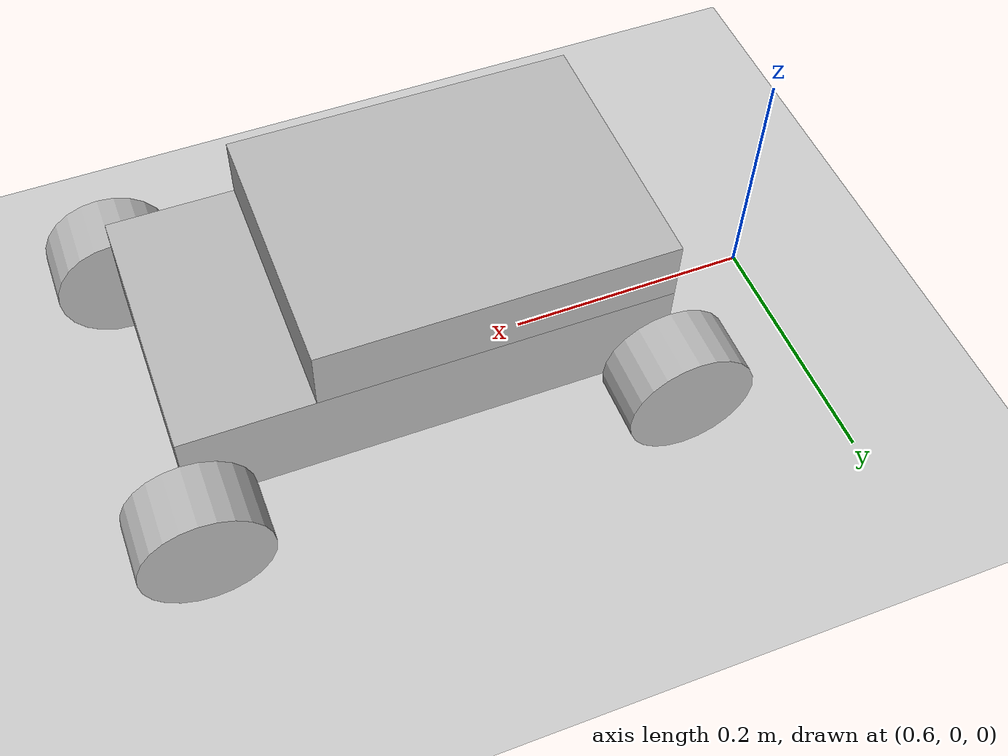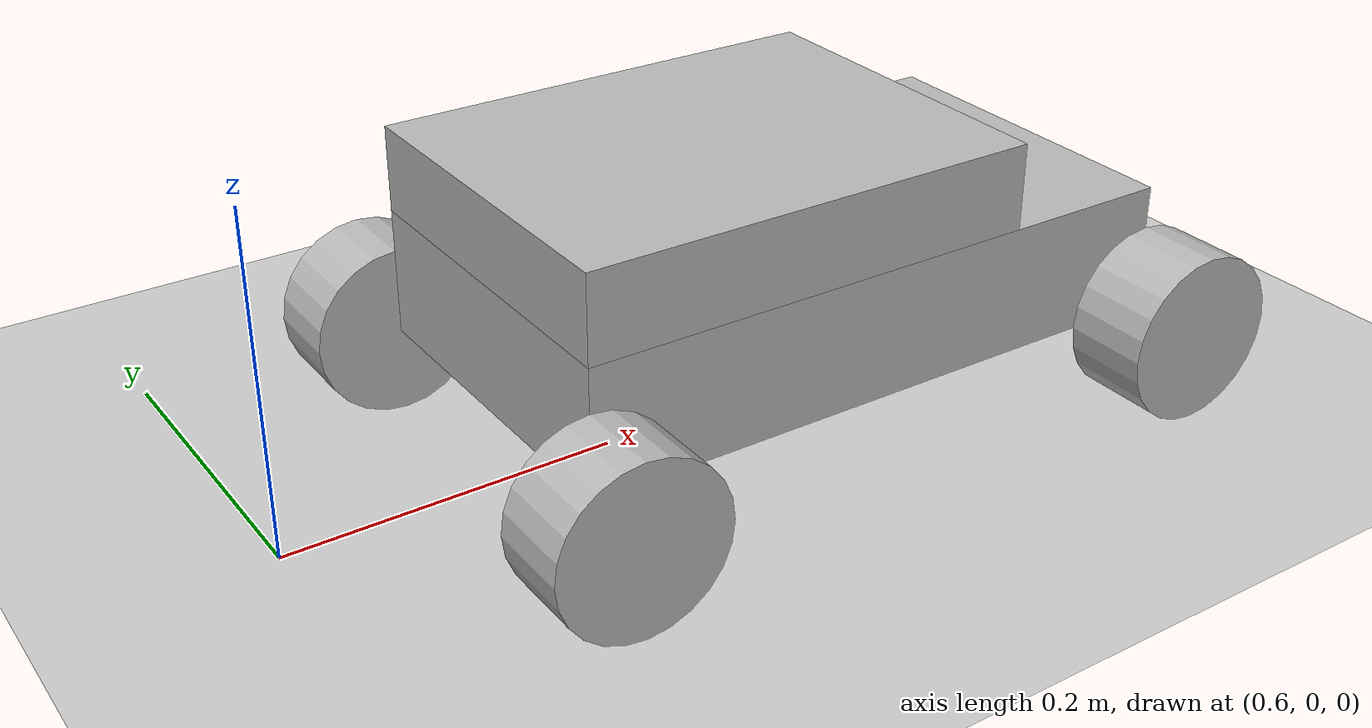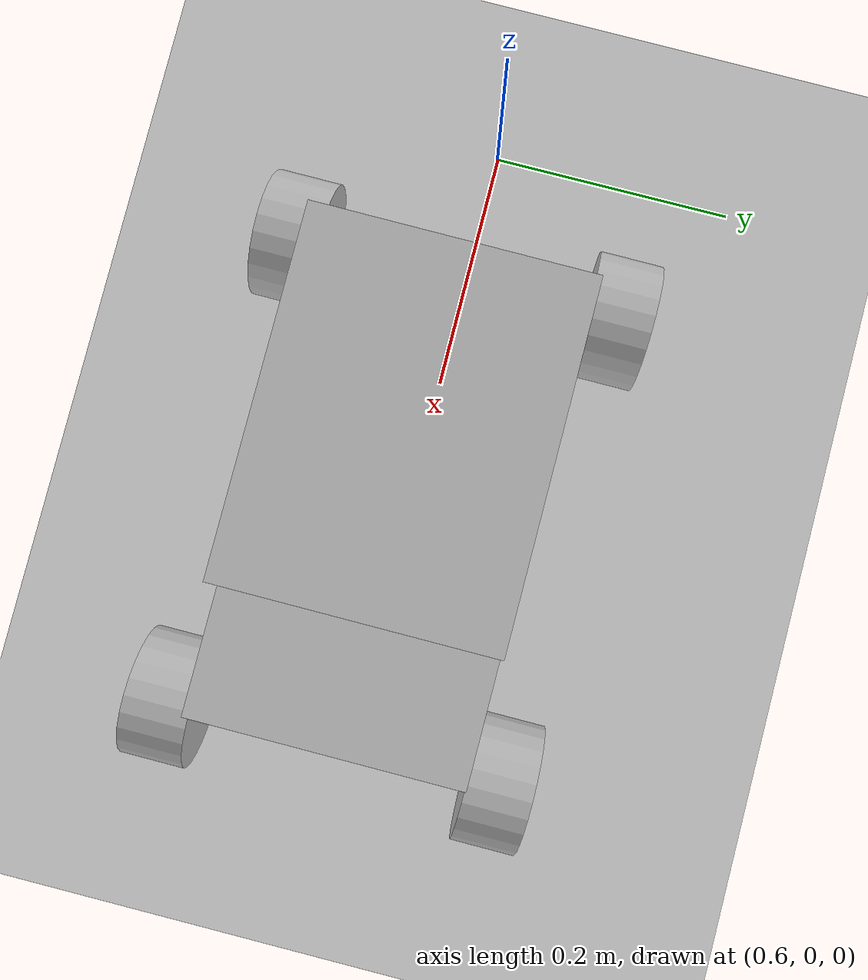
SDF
<sdf version="1.7">
 <world name="default">
  <light name="sun" type="directional">
   <pose>0 0 10 0 -0 0</pose>
   <diffuse>0.8 0.8 0.8 1</diffuse>
   <specular>0.2 0.2 0.2 1</specular>
   <attenuation>
    <range>1000</range>
    <constant>0.9</constant>
    <linear>0.01</linear>
    <quadratic>0.001</quadratic>
   </attenuation>
   <direction>-0.5 0.1 -0.9</direction>
   <spot><inner_angle>0</inner_angle><outer_angle>0</outer_angle><falloff>0</falloff></spot>
  </light>
  <model name="ground_plane">
   <static>1</static>
   <link name="link">
    <collision name="collision">
     <geometry><plane><normal>0 0 1</normal><size>100 100</size></plane></geometry>
     <surface>
      <contact><collide_bitmask>65535</collide_bitmask></contact>
      <friction><ode><mu>100</mu><mu2>50</mu2></ode></friction>
     </surface>
    </collision>
    <visual name="visual">
     <cast_shadows>0</cast_shadows>
     <geometry><plane><normal>0 0 1</normal><size>100 100</size></plane></geometry>
     <material>
      <script><uri>file://media/materials/scripts/gazebo.material</uri><name>Gazebo/Grey</name></script>
     </material>
    </visual>
   </link>
  </model>
  <gravity>0 0 -9.8</gravity>
  <magnetic_field>6e-06 2.3e-05 -4.2e-05</magnetic_field>
  <atmosphere type="adiabatic"/>
  <physics type="ode">
   <max_step_size>0.001</max_step_size>
   <real_time_factor>1</real_time_factor>
   <real_time_update_rate>1000</real_time_update_rate>
  </physics>
  <scene><ambient>0.4 0.4 0.4 1</ambient><background>0.7 0.7 0.7 1</background><shadows>1</shadows></scene>
  <spherical_coordinates>
   <surface_model>EARTH_WGS84</surface_model>
   <latitude_deg>0</latitude_deg>
   <longitude_deg>0</longitude_deg>
   <elevation>0</elevation>
   <heading_deg>0</heading_deg>
  </spherical_coordinates>
  <model name="car">
   <link name="base_link">
    <inertial>
     <pose>-0.01524 0 0.01905 0 -0 0</pose>
     <mass>1</mass>
     <inertia>
      <ixx>0.00500948</ixx>
      <ixy>0</ixy>
      <ixz>0.000677418</ixz>
      <iyy>0.0119328</iyy>
      <iyz>0</iyz>
      <izz>0.0144423</izz>
     </inertia>
    </inertial>
    <collision name="base_link_collision">
     <geometry><box><size>0.3762 0.2124 0.0762</size></box></geometry>
     <surface><friction><ode><mu>0.2</mu><mu2>0.2</mu2></ode></friction></surface>
    </collision>
    <collision name="base_link_fixed_joint_lump__capota_collision_1">
     <pose>-0.0508 0 0.0635 0 -0 0</pose>
     <geometry><box><size>0.2746 0.2124 0.0508</size></box></geometry>
    </collision>
    <visual name="base_link_visual"><geometry><box><size>0.3762 0.2124 0.0762</size></box></geometry></visual>
    <visual name="base_link_fixed_joint_lump__capota_visual_1">
     <pose>-0.0508 0 0.0635 0 -0 0</pose>
     <geometry><box><size>0.2746 0.2124 0.0508</size></box></geometry>
    </visual>
   </link>
   <joint name="back_left_wheel_joint" type="revolute">
    <pose relative_to="base_link">-0.1881 0.1316 -0.0381 1.5708 -0 0</pose>
    <parent>base_link</parent>
    <child>back_left_wheel_link</child>
    <axis>
     <xyz>0 0 1</xyz>
     <limit><lower>-0.5</lower><upper>0.5</upper><effort>10</effort><velocity>10</velocity></limit>
     <dynamics><spring_reference>0</spring_reference><spring_stiffness>0</spring_stiffness></dynamics>
    </axis>
   </joint>
   <link name="back_left_wheel_link">
    <pose relative_to="back_left_wheel_joint">0 0 0 0 -0 0</pose>
    <inertial>
     <mass>0.1</mass>
     <inertia>
      <ixx>8.60213e-05</ixx>
      <ixy>0</ixy>
      <ixz>0</ixz>
      <iyy>8.60213e-05</iyy>
      <iyz>0</iyz>
      <izz>0.000129032</izz>
     </inertia>
    </inertial>
    <collision name="back_left_wheel_link_collision">
     <geometry><cylinder><length>0.0508</length><radius>0.0508</radius></cylinder></geometry>
     <surface><friction><ode><mu>1</mu><mu2>1</mu2></ode></friction></surface>
    </collision>
    <visual name="back_left_wheel_link_visual">
     <geometry><cylinder><length>0.0508</length><radius>0.0508</radius></cylinder></geometry>
    </visual>
   </link>
   <joint name="back_right_wheel_joint" type="revolute">
    <pose relative_to="base_link">-0.1881 -0.1316 -0.0381 1.5708 -0 0</pose>
    <parent>base_link</parent>
    <child>back_right_wheel_link</child>
    <axis>
     <xyz>0 0 1</xyz>
     <limit><lower>-0.5</lower><upper>0.5</upper><effort>10</effort><velocity>10</velocity></limit>
     <dynamics><spring_reference>0</spring_reference><spring_stiffness>0</spring_stiffness></dynamics>
    </axis>
   </joint>
   <link name="back_right_wheel_link">
    <pose relative_to="back_right_wheel_joint">0 0 0 0 -0 0</pose>
    <inertial>
     <mass>0.1</mass>
     <inertia>
      <ixx>8.60213e-05</ixx>
      <ixy>0</ixy>
      <ixz>0</ixz>
      <iyy>8.60213e-05</iyy>
      <iyz>0</iyz>
      <izz>0.000129032</izz>
     </inertia>
    </inertial>
    <collision name="back_right_wheel_link_collision">
     <geometry><cylinder><length>0.0508</length><radius>0.0508</radius></cylinder></geometry>
     <surface><friction><ode><mu>1</mu><mu2>1</mu2></ode></friction></surface>
    </collision>
    <visual name="back_right_wheel_link_visual">
     <geometry><cylinder><length>0.0508</length><radius>0.0508</radius></cylinder></geometry>
    </visual>
   </link>
   <joint name="front_left_wheel_joint" type="revolute">
    <pose relative_to="base_link">0.1881 0.1316 -0.0381 1.5708 -0 0</pose>
    <parent>base_link</parent>
    <child>front_left_wheel_link</child>
    <axis>
     <xyz>0 0 1</xyz>
     <limit><lower>-0.5</lower><upper>0.5</upper><effort>10</effort><velocity>10</velocity></limit>
     <dynamics><spring_reference>0</spring_reference><spring_stiffness>0</spring_stiffness></dynamics>
    </axis>
   </joint>
   <link name="front_left_wheel_link">
    <pose relative_to="front_left_wheel_joint">0 0 0 0 -0 0</pose>
    <inertial>
     <mass>0.1</mass>
     <inertia>
      <ixx>8.60213e-05</ixx>
      <ixy>0</ixy>
      <ixz>0</ixz>
      <iyy>8.60213e-05</iyy>
      <iyz>0</iyz>
      <izz>0.000129032</izz>
     </inertia>
    </inertial>
    <collision name="front_left_wheel_link_collision">
     <geometry><cylinder><length>0.0508</length><radius>0.0508</radius></cylinder></geometry>
     <surface><friction><ode><mu>1</mu><mu2>1</mu2></ode></friction></surface>
    </collision>
    <visual name="front_left_wheel_link_visual">
     <geometry><cylinder><length>0.0508</length><radius>0.0508</radius></cylinder></geometry>
    </visual>
   </link>
   <joint name="front_right_wheel_joint" type="revolute">
    <pose relative_to="base_link">0.1881 -0.1316 -0.0381 1.5708 -0 0</pose>
    <parent>base_link</parent>
    <child>front_right_wheel_link</child>
    <axis>
     <xyz>0 0 1</xyz>
     <limit><lower>-0.5</lower><upper>0.5</upper><effort>10</effort><velocity>10</velocity></limit>
     <dynamics><spring_reference>0</spring_reference><spring_stiffness>0</spring_stiffness></dynamics>
    </axis>
   </joint>
   <link name="front_right_wheel_link">
    <pose relative_to="front_right_wheel_joint">0 0 0 0 -0 0</pose>
    <inertial>
     <mass>0.1</mass>
     <inertia>
      <ixx>8.60213e-05</ixx>
      <ixy>0</ixy>
      <ixz>0</ixz>
      <iyy>8.60213e-05</iyy>
      <iyz>0</iyz>
      <izz>0.000129032</izz>
     </inertia>
    </inertial>
    <collision name="front_right_wheel_link_collision">
     <geometry><cylinder><length>0.0508</length><radius>0.0508</radius></cylinder></geometry>
     <surface><friction><ode><mu>1</mu><mu2>1</mu2></ode></friction></surface>
    </collision>
    <visual name="front_right_wheel_link_visual">
     <geometry><cylinder><length>0.0508</length><radius>0.0508</radius></cylinder></geometry>
    </visual>
   </link>
   <plugin name="gazebo_ros_control" filename="libgazebo_ros_control.so">
    <robotNamespace>/car</robotNamespace>
    <controlPeriod>0.001</controlPeriod>
    <robotSimType>gazebo_ros_control/DefaultRobotHWSim</robotSimType>
   </plugin>
   <frame name="capota_joint" attached_to="base_link"><pose>-0.0508 0 0.0635 0 -0 0</pose></frame>
   <frame name="capota" attached_to="capota_joint"/>
   <pose>0.910606 -0.006249 0.088901 -1e-06 -1e-06 -0.003702</pose>
  </model>
 </world>
</sdf>
